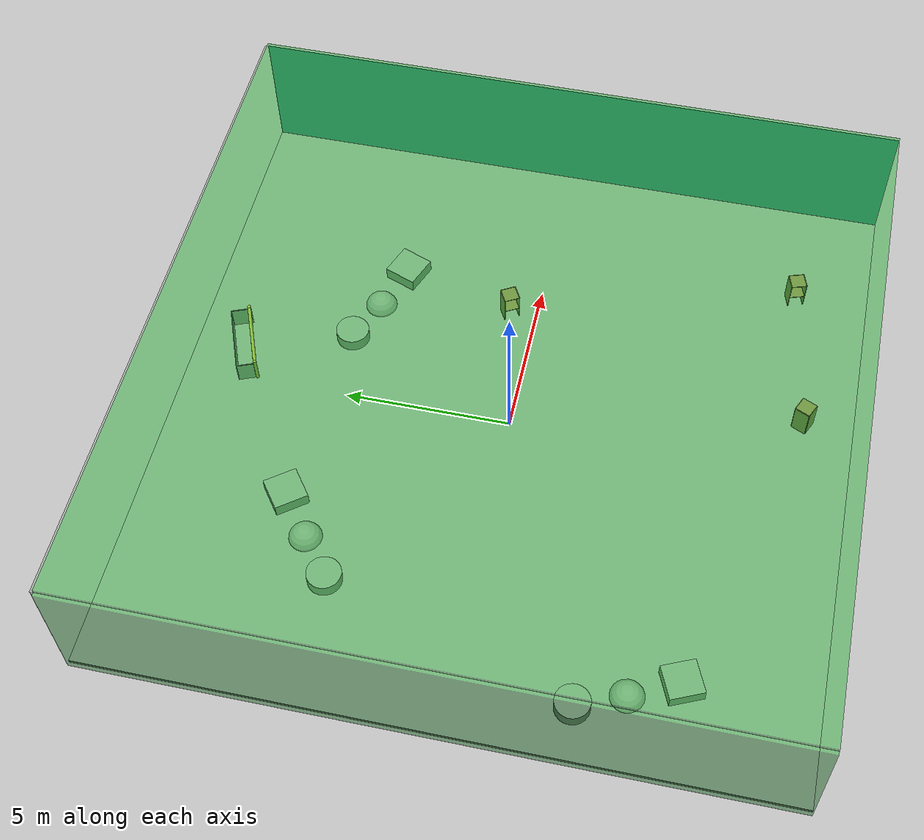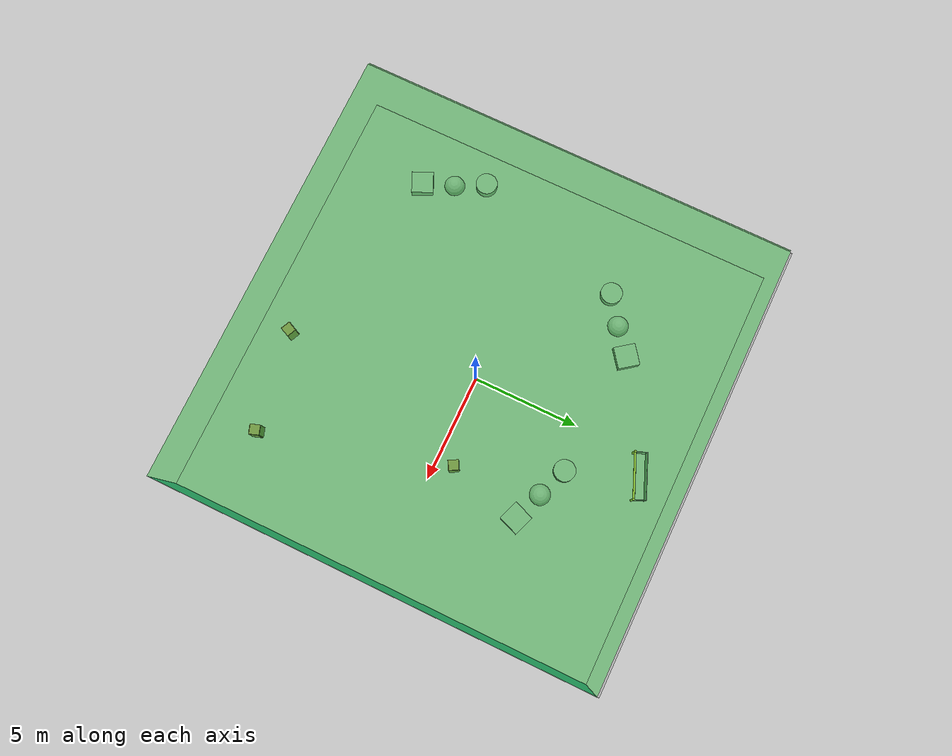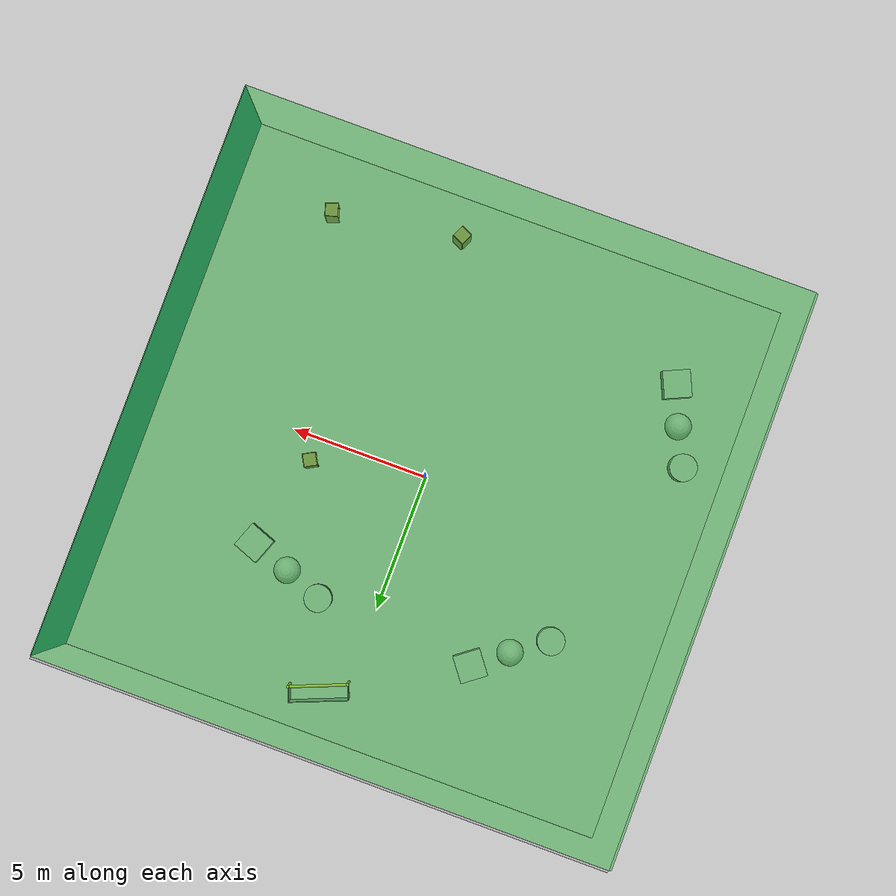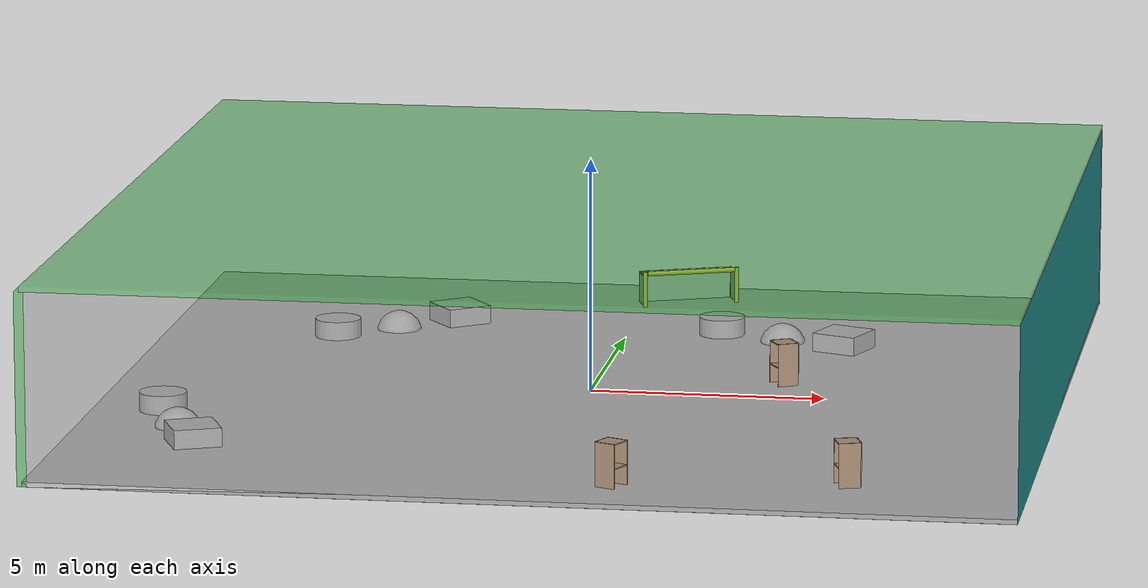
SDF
<sdf version="1.4">
 <world name="default">
  <physics type="ode">
   <max_step_size>0.001</max_step_size>
   <real_time_factor>1</real_time_factor>
   <real_time_update_rate>1000</real_time_update_rate>
   <gravity>0 0 -9.8</gravity>
  </physics>
  <scene><ambient>0.4 0.4 0.4 1</ambient><background>0.7 0.7 0.7 1</background><shadows>1</shadows></scene>
  <model name="Surrounding">
   <static>1</static>
   <link name="Ceiling">
    <collision name="Ceiling_Collision"><geometry><box><size>20 20 0.1</size></box></geometry></collision>
    <visual name="Ceiling_Visual">
     <geometry><box><size>20 20 0.1</size></box></geometry>
     <material>
      <script><uri>file://media/materials/scripts/gazebo.material</uri><name>Gazebo/GreenTransparent</name></script>
     </material>
    </visual>
    <pose>0 0 4.05 0 0 0</pose>
   </link>
   <link name="Wall_South">
    <collision name="Wall_South_Collision">
     <geometry><box><size>20 0 4</size></box></geometry>
     <pose>0 0 2 0 -0 0</pose>
    </collision>
    <visual name="Wall_South_Visual">
     <pose>0 0 2 0 -0 0</pose>
     <geometry><box><size>20 0 4</size></box></geometry>
     <material>
      <script><uri>file://media/materials/scripts/gazebo.material</uri><name>Gazebo/GreyTransparent</name></script>
     </material>
    </visual>
    <velocity_decay><linear>0</linear><angular>0</angular></velocity_decay>
    <pose>0 -10 0 0 -0 0</pose>
   </link>
   <link name="Wall_East">
    <collision name="Wall_21_Collision">
     <geometry><box><size>20 0 4</size></box></geometry>
     <pose>0 0 2 0 -0 0</pose>
    </collision>
    <visual name="Wall_21_Visual">
     <pose>0 0 2 0 -0 0</pose>
     <geometry><box><size>20 0 4</size></box></geometry>
     <material>
      <script><uri>file://media/materials/scripts/gazebo.material</uri><name>Gazebo/Turquoise</name></script>
     </material>
    </visual>
    <velocity_decay><linear>0</linear><angular>0</angular></velocity_decay>
    <pose>10 0 0 0 -0 1.5708</pose>
   </link>
   <link name="Wall_North">
    <collision name="Wall_22_Collision">
     <geometry><box><size>20 0.2 4</size></box></geometry>
     <pose>0 0 2 0 -0 0</pose>
    </collision>
    <visual name="Wall_22_Visual">
     <pose>0 0 2 0 -0 0</pose>
     <geometry><box><size>20 0.2 4</size></box></geometry>
     <material>
      <script><uri>file://media/materials/scripts/gazebo.material</uri><name>Gazebo/GreyTransparent</name></script>
     </material>
    </visual>
    <velocity_decay><linear>0</linear><angular>0</angular></velocity_decay>
    <pose>0 10 0 0 -0 0</pose>
   </link>
   <link name="Wall_West">
    <collision name="Wall_23_Collision">
     <geometry><box><size>20 0.2 4</size></box></geometry>
     <pose>0 0 2 0 -0 0</pose>
    </collision>
    <visual name="Wall_23_Visual">
     <pose>0 0 2 0 -0 0</pose>
     <geometry><box><size>20 0.2 4</size></box></geometry>
     <material>
      <script><uri>file://media/materials/scripts/gazebo.material</uri><name>Gazebo/GreenTransparent</name></script>
     </material>
    </visual>
    <velocity_decay><linear>0</linear><angular>0</angular></velocity_decay>
    <pose>-10 0 0 0 0 -1.5708</pose>
   </link>
   <link name="Ground_link">
    <collision name="collision">
     <pose>0 0 .05 0 -0 0</pose>
     <geometry><box><size>20 20 0.1</size></box></geometry>
    </collision>
    <visual name="visual">
     <pose>0 0 .05 0 -0 0</pose>
     <geometry><box><size>20 20 0.1</size></box></geometry>
     <material>
      <script><uri>file://media/materials/scripts/gazebo.material</uri><name>Gazebo/JointAnchor</name></script>
     </material>
    </visual>
   </link>
   <static>1</static>
  </model>
  <spherical_coordinates>
   <surface_model>EARTH_WGS84</surface_model>
   <latitude_deg>0</latitude_deg>
   <longitude_deg>0</longitude_deg>
   <elevation>0</elevation>
   <heading_deg>0</heading_deg>
  </spherical_coordinates>
  <light name="lightball_0" type="diffuse">
   <diffuse>0.8 0.8 0.8 1</diffuse>
   <specular>0.2 0.2 0.2 1</specular>
   <attenuation>
    <range>100</range>
    <constant>0.7</constant>
    <linear>0.01</linear>
    <quadratic>0.001</quadratic>
   </attenuation>
   <direction>-0.5 0.1 -0.9</direction>
   <pose>-2.83884477926 -6.28979356771 3.33005513973 0 0 0</pose>
  </light>
  <light name="lightball_1" type="diffuse">
   <diffuse>0.8 0.8 0.8 1</diffuse>
   <specular>0.2 0.2 0.2 1</specular>
   <attenuation>
    <range>100</range>
    <constant>0.7</constant>
    <linear>0.01</linear>
    <quadratic>0.001</quadratic>
   </attenuation>
   <direction>-0.5 0.1 -0.9</direction>
   <pose>7.69807693542 1.75076152803 0.878617127733 0 0 0</pose>
  </light>
  <light name="lightball_2" type="diffuse">
   <diffuse>0.8 0.8 0.8 1</diffuse>
   <specular>0.2 0.2 0.2 1</specular>
   <attenuation>
    <range>100</range>
    <constant>0.7</constant>
    <linear>0.01</linear>
    <quadratic>0.001</quadratic>
   </attenuation>
   <direction>-0.5 0.1 -0.9</direction>
   <pose>5.74748350492 -1.85318672039 0.899039959461 0 0 0</pose>
  </light>
  <light name="lightball_3" type="diffuse">
   <diffuse>0.8 0.8 0.8 1</diffuse>
   <specular>0.2 0.2 0.2 1</specular>
   <attenuation>
    <range>100</range>
    <constant>0.7</constant>
    <linear>0.01</linear>
    <quadratic>0.001</quadratic>
   </attenuation>
   <direction>-0.5 0.1 -0.9</direction>
   <pose>-3.96882566721 6.17573802589 1.79048716437 0 0 0</pose>
  </light>
  <light name="lightball_4" type="diffuse">
   <diffuse>0.8 0.8 0.8 1</diffuse>
   <specular>0.2 0.2 0.2 1</specular>
   <attenuation>
    <range>100</range>
    <constant>0.7</constant>
    <linear>0.01</linear>
    <quadratic>0.001</quadratic>
   </attenuation>
   <direction>-0.5 0.1 -0.9</direction>
   <pose>-8.09151109987 9.20286116522 1.22604262723 0 0 0</pose>
  </light>
  <light name="lightball_5" type="diffuse">
   <diffuse>0.8 0.8 0.8 1</diffuse>
   <specular>0.2 0.2 0.2 1</specular>
   <attenuation>
    <range>100</range>
    <constant>0.7</constant>
    <linear>0.01</linear>
    <quadratic>0.001</quadratic>
   </attenuation>
   <direction>-0.5 0.1 -0.9</direction>
   <pose>4.48828979957 1.03662613298 1.3086676968 0 0 0</pose>
  </light>
  <light name="lightball_6" type="diffuse">
   <diffuse>0.8 0.8 0.8 1</diffuse>
   <specular>0.2 0.2 0.2 1</specular>
   <attenuation>
    <range>100</range>
    <constant>0.7</constant>
    <linear>0.01</linear>
    <quadratic>0.001</quadratic>
   </attenuation>
   <direction>-0.5 0.1 -0.9</direction>
   <pose>7.58476976211 3.31295161917 1.4017628596 0 0 0</pose>
  </light>
  <light name="lightball_7" type="diffuse">
   <diffuse>0.8 0.8 0.8 1</diffuse>
   <specular>0.2 0.2 0.2 1</specular>
   <attenuation>
    <range>100</range>
    <constant>0.7</constant>
    <linear>0.01</linear>
    <quadratic>0.001</quadratic>
   </attenuation>
   <direction>-0.5 0.1 -0.9</direction>
   <pose>0.194462612615 7.45049160271 1.86603645376 0 0 0</pose>
  </light>
  <light name="lightball_8" type="diffuse">
   <diffuse>0.8 0.8 0.8 1</diffuse>
   <specular>0.2 0.2 0.2 1</specular>
   <attenuation>
    <range>100</range>
    <constant>0.7</constant>
    <linear>0.01</linear>
    <quadratic>0.001</quadratic>
   </attenuation>
   <direction>-0.5 0.1 -0.9</direction>
   <pose>8.44520492018 -0.963148495029 3.8645870803 0 0 0</pose>
  </light>
  <light name="lightball_9" type="diffuse">
   <diffuse>0.8 0.8 0.8 1</diffuse>
   <specular>0.2 0.2 0.2 1</specular>
   <attenuation>
    <range>100</range>
    <constant>0.7</constant>
    <linear>0.01</linear>
    <quadratic>0.001</quadratic>
   </attenuation>
   <direction>-0.5 0.1 -0.9</direction>
   <pose>-9.60403094671 -4.95226470804 0.74913923197 0 0 0</pose>
  </light>
  <light name="lightball_10" type="diffuse">
   <diffuse>0.8 0.8 0.8 1</diffuse>
   <specular>0.2 0.2 0.2 1</specular>
   <attenuation>
    <range>100</range>
    <constant>0.7</constant>
    <linear>0.01</linear>
    <quadratic>0.001</quadratic>
   </attenuation>
   <direction>-0.5 0.1 -0.9</direction>
   <pose>-2.21162434787 5.74556195664 3.05590144801 0 0 0</pose>
  </light>
  <light name="lightball_11" type="diffuse">
   <diffuse>0.8 0.8 0.8 1</diffuse>
   <specular>0.2 0.2 0.2 1</specular>
   <attenuation>
    <range>100</range>
    <constant>0.7</constant>
    <linear>0.01</linear>
    <quadratic>0.001</quadratic>
   </attenuation>
   <direction>-0.5 0.1 -0.9</direction>
   <pose>4.33020499179 -0.042348873103 1.36887312959 0 0 0</pose>
  </light>
  <light name="lightball_12" type="diffuse">
   <diffuse>0.8 0.8 0.8 1</diffuse>
   <specular>0.2 0.2 0.2 1</specular>
   <attenuation>
    <range>100</range>
    <constant>0.7</constant>
    <linear>0.01</linear>
    <quadratic>0.001</quadratic>
   </attenuation>
   <direction>-0.5 0.1 -0.9</direction>
   <pose>9.10202221475 -3.76803370487 2.89293587312 0 0 0</pose>
  </light>
  <light name="lightball_13" type="diffuse">
   <diffuse>0.8 0.8 0.8 1</diffuse>
   <specular>0.2 0.2 0.2 1</specular>
   <attenuation>
    <range>100</range>
    <constant>0.7</constant>
    <linear>0.01</linear>
    <quadratic>0.001</quadratic>
   </attenuation>
   <direction>-0.5 0.1 -0.9</direction>
   <pose>-1.22394241601 7.01209858839 1.85997974901 0 0 0</pose>
  </light>
  <include>
   <uri>model://textured_shapes</uri>
   <pose>-7.90279102116 -4.85915239878 0 0 0 0.418228193199</pose>
  </include>
  <include>
   <uri>model://textured_shapes</uri>
   <pose>-5.00266258514 4.83051204278 0 0 0 2.21755888405</pose>
  </include>
  <include><uri>model://cabinet</uri><pose>1.71799547364 -8.48941614909 0 0 0 2.70653569318</pose></include>
  <include>
   <uri>model://robocup_3Dsim_goal</uri>
   <pose>1.01153817489 8.18449723116 0 0 0 1.95032094857</pose>
  </include>
  <include><uri>model://cabinet</uri><pose>4.02396748669 0.837959753828 0 0 0 0.513778761507</pose></include>
  <include>
   <uri>model://textured_shapes</uri>
   <pose>3.49770865591 4.82146348635 0 0 0 1.20874704231</pose>
  </include>
  <include><uri>model://cabinet</uri><pose>6.37684658883 -7.74601005908 0 0 0 0.313305218612</pose></include>
 </world>
</sdf>

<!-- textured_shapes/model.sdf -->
<sdf version="1.6">
  <model name="textured_shapes">
    <pose>0 0 0.5 0 0 0</pose>
    <link name="box">
      <pose>0 -1.5 0 0 0 0</pose>
      <collision name="collision">
        <geometry>
          <box>
            <size>1 1 1</size>
          </box>
        </geometry>
      </collision>
      <visual name="visual">
        <geometry>
          <box>
            <size>1 1 1</size>
          </box>
        </geometry>
        <material>
          <script>
            <uri>model://../model_source/models/textured_shapes/materials/scripts</uri>
            <uri>model://../model_source/models/textured_shapes/materials/textures</uri>
            <name>TexturedShape/Squares</name>
          </script>
        </material>
      </visual>
    </link>
    <link name="sphere">
      <collision name="collision">
        <geometry>
          <sphere>
            <radius>0.5</radius>
          </sphere>
        </geometry>
      </collision>
      <visual name="visual">
        <geometry>
          <sphere>
            <radius>0.5</radius>
          </sphere>
        </geometry>
        <material>
          <script>
            <uri>model://../model_source/models/textured_shapes/materials/scripts</uri>
            <uri>model://../model_source/models/textured_shapes/materials/textures</uri>
            <name>TexturedShape/Squares</name>
          </script>
        </material>
      </visual>
    </link>
    <link name="cylinder">
      <pose>0 1.5 0 0 0 0</pose>
      <collision name="collision">
        <geometry>
          <cylinder>
            <radius>0.5</radius>
            <length>1</length>
          </cylinder>
        </geometry>
      </collision>
      <visual name="visual">
        <geometry>
          <cylinder>
            <radius>0.5</radius>
            <length>1</length>
          </cylinder>
        </geometry>
        <material>
          <script>
            <uri>model://../model_source/models/textured_shapes/materials/scripts</uri>
            <uri>model://../model_source/models/textured_shapes/materials/textures</uri>
            <name>TexturedShape/Squares</name>
          </script>
        </material>
      </visual>
    </link>
  </model>
</sdf>

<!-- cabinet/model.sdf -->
<sdf version="1.5">
  <model name="cabinet">
    <static>true</static>
    <link name="cabinet_bottom_plate">
      <inertial>
        <pose>0 0 -1 0 0 0</pose>
        <inertia>
          <ixx>2.050000</ixx>
          <ixy>0</ixy>
          <ixz>0</ixz>
          <iyy>2.050000</iyy>
          <iyz>0</iyz>
          <izz>2.050000</izz>
        </inertia>
        <mass>25.000000</mass>
      </inertial>
      <collision name="cabinet_bottom_plate_geom">
        <pose>0 0 0.010000 0 0 0</pose>
        <geometry>
          <box>
            <size>0.450000 0.450000 0.020000</size>
          </box>
        </geometry>
      </collision>
      <visual name="cabinet_bottom_plate_geom_visual">
        <pose>0 0 0.010000 0 0 0</pose>
        <geometry>
          <box>
            <size>0.450000 0.450000 0.020000</size>
          </box>
        </geometry>
        <material>
          <script>
            <uri>model://media/materials/scripts/gazebo.material</uri>
            <name>Gazebo/Wood</name>
          </script>
        </material>
      </visual>
      <collision name="cabinet_bottom_plate_geom_cabinet_back_plate">
        <pose>0.235000 0 0.510000 0 0 0</pose>
        <geometry>
          <box>
            <size>0.020000 0.450000 1.020000</size>
          </box>
        </geometry>
      </collision>
      <visual name="cabinet_bottom_plate_geom_cabinet_back_plate_visual">
        <pose>0.235000 0 0.510000 0 0 0</pose>
        <geometry>
          <box>
            <size>0.020000 0.450000 1.020000</size>
          </box>
        </geometry>
        <material>
          <script>
            <uri>model://media/materials/scripts/gazebo.material</uri>
            <name>Gazebo/Wood</name>
          </script>
        </material>
      </visual>
      <collision name="cabinet_bottom_plate_geom_cabinet_left_plate">
        <pose>0 0.235000 0.510000 0 0 0</pose>
        <geometry>
          <box>
            <size>0.450000 0.020000 1.020000</size>
          </box>
        </geometry>
      </collision>
      <visual name="cabinet_bottom_plate_geom_cabinet_left_plate_visual">
        <pose>0 0.235000 0.510000 0 0 0</pose>
        <geometry>
          <box>
            <size>0.450000 0.020000 1.020000</size>
          </box>
        </geometry>
        <material>
          <script>
            <uri>model://media/materials/scripts/gazebo.material</uri>
            <name>Gazebo/Wood</name>
          </script>
        </material>
      </visual>
      <collision name="cabinet_bottom_plate_geom_cabinet_middle_plate">
        <pose>0 0 0.510000 0 0 0</pose>
        <geometry>
          <box>
            <size>0.450000 0.450000 0.020000</size>
          </box>
        </geometry>
      </collision>
      <visual name="cabinet_bottom_plate_geom_cabinet_middle_plate_visual">
        <pose>0 0 0.510000 0 0 0</pose>
        <geometry>
          <box>
            <size>0.450000 0.450000 0.020000</size>
          </box>
        </geometry>
        <material>
          <script>
            <uri>model://media/materials/scripts/gazebo.material</uri>
            <name>Gazebo/Wood</name>
          </script>
        </material>
      </visual>
      <collision name="cabinet_bottom_plate_geom_cabinet_right_plate">
        <pose>0 -0.235000 0.510000 0 0 0</pose>
        <geometry>
          <box>
            <size>0.450000 0.020000 1.020000</size>
          </box>
        </geometry>
      </collision>
      <visual name="cabinet_bottom_plate_geom_cabinet_right_plate_visual">
        <pose>0 -0.235000 0.510000 0 0 0</pose>
        <geometry>
          <box>
            <size>0.450000 0.020000 1.020000</size>
          </box>
        </geometry>
        <material>
          <script>
            <uri>model://media/materials/scripts/gazebo.material</uri>
            <name>Gazebo/Wood</name>
          </script>
        </material>
      </visual>
      <collision name="cabinet_bottom_plate_geom_cabinet_top_plate">
        <pose>0 0 1.010000 0 0 0</pose>
        <geometry>
          <box>
            <size>0.450000 0.450000 0.020000</size>
          </box>
        </geometry>
      </collision>
      <visual name="cabinet_bottom_plate_geom_cabinet_top_plate_visual">
        <pose>0 0 1.010000 0 0 0</pose>
        <geometry>
          <box>
            <size>0.450000 0.450000 0.020000</size>
          </box>
        </geometry>
        <material>
          <script>
            <uri>model://media/materials/scripts/gazebo.material</uri>
            <name>Gazebo/Wood</name>
          </script>
        </material>
      </visual>
    </link>
  </model>
</sdf>

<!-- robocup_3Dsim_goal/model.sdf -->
<sdf version="1.5">
  <model name="robocup_3d_goal">
    <static>true</static>
    <link name="left_post">
      <pose>0 1.05 0.45 0 0 0</pose>
      <collision name="collision">
        <geometry>
          <cylinder>
            <radius>0.05</radius>
            <length>0.9</length>
          </cylinder>
        </geometry>
      </collision>
      <visual name="visual">
        <geometry>
          <cylinder>
            <radius>0.05</radius>
            <length>0.9</length>
          </cylinder>
        </geometry>
        <material>
          <script>
            <uri>file://media/materials/scripts/gazebo.material</uri>
            <name>Gazebo/ZincYellow</name>
          </script>
        </material>
      </visual>
    </link>
    <link name="left_support_horiz_lower">
      <pose>0.30 1.05 0.01 0 0 0</pose>
      <collision name="collision">
        <geometry>
          <box>
            <size>0.50 0.02 0.02</size>
          </box>
        </geometry>
      </collision>
      <visual name="visual">
        <geometry>
          <box>
            <size>0.50 0.02 0.02</size>
          </box>
        </geometry>
        <material>
          <script>
            <uri>file://media/materials/scripts/gazebo.material</uri>
            <name>Gazebo/White</name>
          </script>
        </material>
      </visual>
    </link>
    <link name="left_support_horiz_upper">
      <pose>0.30 1.05 0.79 0 0 0</pose>
      <collision name="collision">
        <geometry>
          <box>
            <size>0.50 0.02 0.02</size>
          </box>
        </geometry>
      </collision>
      <visual name="visual">
        <geometry>
          <box>
            <size>0.50 0.02 0.02</size>
          </box>
        </geometry>
        <material>
          <script>
            <uri>file://media/materials/scripts/gazebo.material</uri>
            <name>Gazebo/White</name>
          </script>
        </material>
      </visual>
    </link>
    <link name="left_support_vertical">
      <pose>0.56 1.05 0.4 0 1.5708 0</pose>
      <collision name="collision">
        <geometry>
          <box>
            <size>0.80 0.02 0.02</size>
          </box>
        </geometry>
      </collision>
      <visual name="visual">
        <geometry>
          <box>
            <size>0.80 0.02 0.02</size>
          </box>
        </geometry>
        <material>
          <script>
            <uri>file://media/materials/scripts/gazebo.material</uri>
            <name>Gazebo/White</name>
          </script>
        </material>
      </visual>
    </link>
    <link name="right_support_horiz_lower">
      <pose>0.30 -1.05 0.01 0 0 0</pose>
      <collision name="collision">
        <geometry>
          <box>
            <size>0.50 0.02 0.02</size>
          </box>
        </geometry>
      </collision>
      <visual name="visual">
        <geometry>
          <box>
            <size>0.50 0.02 0.02</size>
          </box>
        </geometry>
        <material>
          <script>
            <uri>file://media/materials/scripts/gazebo.material</uri>
            <name>Gazebo/White</name>
          </script>
        </material>
      </visual>
    </link>
    <link name="right_support_horiz_upper">
      <pose>0.30 -1.05 0.79 0 0 0</pose>
      <collision name="collision">
        <geometry>
          <box>
            <size>0.50 0.02 0.02</size>
          </box>
        </geometry>
      </collision>
      <visual name="visual">
        <geometry>
          <box>
            <size>0.50 0.02 0.02</size>
          </box>
        </geometry>
        <material>
          <script>
            <uri>file://media/materials/scripts/gazebo.material</uri>
            <name>Gazebo/White</name>
          </script>
        </material>
      </visual>
    </link>
    <link name="right_support_vertical">
      <pose>0.56 -1.05 0.4 0 1.5708 0</pose>
      <collision name="collision">
        <geometry>
          <box>
            <size>0.80 0.02 0.02</size>
          </box>
        </geometry>
      </collision>
      <visual name="visual">
        <geometry>
          <box>
            <size>0.80 0.02 0.02</size>
          </box>
        </geometry>
        <material>
          <script>
            <uri>file://media/materials/scripts/gazebo.material</uri>
            <name>Gazebo/White</name>
          </script>
        </material>
      </visual>
    </link>
    <link name="center_support_horiz_lower">
      <pose>0.56 0 0.01 0 1.5708 0</pose>
      <collision name="collision">
        <geometry>
          <box>
            <size>0.02 2.08 0.02</size>
          </box>
        </geometry>
      </collision>
      <visual name="visual">
        <geometry>
          <box>
            <size>0.02 2.08 0.02</size>
          </box>
        </geometry>
        <material>
          <script>
            <uri>file://media/materials/scripts/gazebo.material</uri>
            <name>Gazebo/White</name>
          </script>
        </material>
      </visual>
    </link>
    <link name="center_support_horiz_upper">
      <pose>0.56 0 0.79 0 1.5708 0</pose>
      <collision name="collision">
        <geometry>
          <box>
            <size>0.02 2.08 0.02</size>
          </box>
        </geometry>
      </collision>
      <visual name="visual">
        <geometry>
          <box>
            <size>0.02 2.08 0.02</size>
          </box>
        </geometry>
        <material>
          <script>
            <uri>file://media/materials/scripts/gazebo.material</uri>
            <name>Gazebo/White</name>
          </script>
        </material>
      </visual>
    </link>
    <link name="right_post">
      <pose>0 -1.05 0.45 0 0 0</pose>
      <collision name="collision">
        <geometry>
          <cylinder>
            <radius>0.05</radius>
            <length>0.9</length>
          </cylinder>
        </geometry>
      </collision>
      <visual name="visual">
        <geometry>
          <cylinder>
            <radius>0.05</radius>
            <length>0.9</length>
          </cylinder>
        </geometry>
        <material>
          <script>
            <uri>file://media/materials/scripts/gazebo.material</uri>
            <name>Gazebo/ZincYellow</name>
          </script>
        </material>
      </visual>
    </link>
    <link name="crossbar">
      <pose>0 0 0.85 1.57 1.57 0</pose>
      <collision name="collision">
        <geometry>
          <cylinder>
            <radius>0.05</radius>
            <length>2.0</length>
          </cylinder>
        </geometry>
      </collision>
      <visual name="visual">
        <geometry>
          <cylinder>
            <radius>0.05</radius>
            <length>2.0</length>
          </cylinder>
        </geometry>
        <material>
          <script>
            <uri>file://media/materials/scripts/gazebo.material</uri>
            <name>Gazebo/ZincYellow</name>
          </script>
        </material>
      </visual>
    </link>
    <link name="center_net">
      <pose>0.56 0 0.40 0 0 0</pose>
      <collision name="collision">
        <geometry>
          <box>
            <size>0.01 2.1 0.80</size>
          </box>
        </geometry>
      </collision>
      <visual name="visual">
        <geometry>
          <box>
            <size>0.01 2.1 0.80</size>
          </box>
        </geometry>
        <material>
          <script>
            <uri>model://../model_source/models/robocup09_spl_field/materials/scripts/</uri>
            <uri>model://../model_source/models/robocup09_spl_field/materials/textures/</uri>
            <name>RoboCup/Net</name>
          </script>
        </material>
      </visual>
    </link>
    <link name="left_net">
      <pose>0.30 1.05 0.40 0 0 0</pose>
      <collision name="collision">
        <geometry>
          <box>
            <size>0.50 0.01 0.76</size>
          </box>
        </geometry>
      </collision>
      <visual name="visual">
        <geometry>
          <box>
            <size>0.50 0.01 0.76</size>
          </box>
        </geometry>
        <material>
          <script>
            <uri>model://../model_source/models/robocup09_spl_field/materials/scripts/</uri>
            <uri>model://../model_source/models/robocup09_spl_field/materials/textures/</uri>
            <name>RoboCup/Net</name>
          </script>
        </material>
      </visual>
    </link>
    <link name="right_net">
      <pose>0.30 -1.05 0.40 0 0 0</pose>
      <collision name="collision">
        <geometry>
          <box>
            <size>0.50 0.01 0.76</size>
          </box>
        </geometry>
      </collision>
      <visual name="visual">
        <geometry>
          <box>
            <size>0.50 0.01 0.76</size>
          </box>
        </geometry>
        <material>
          <script>
            <uri>model://../model_source/models/robocup09_spl_field/materials/scripts/</uri>
            <uri>model://../model_source/models/robocup09_spl_field/materials/textures/</uri>
            <name>RoboCup/Net</name>
          </script>
        </material>
      </visual>
    </link>
  </model>
</sdf>
